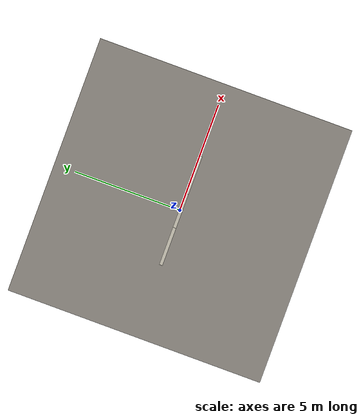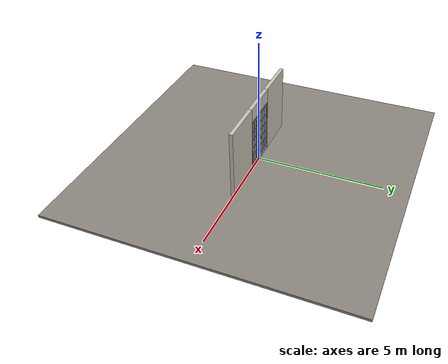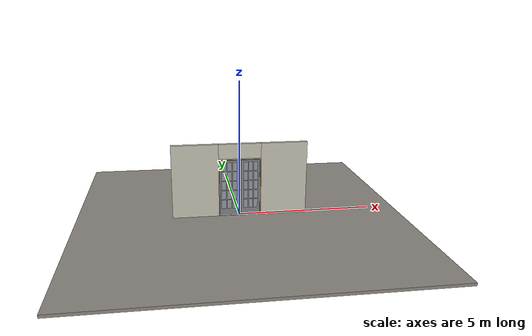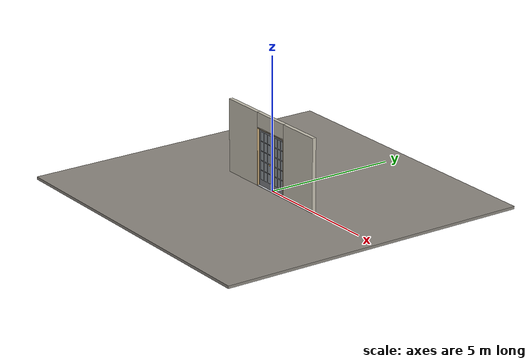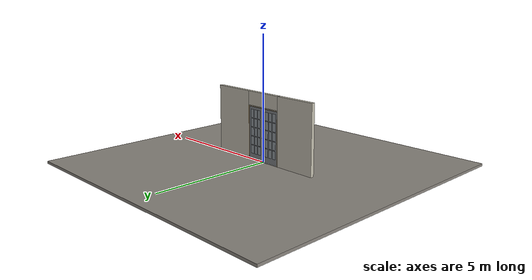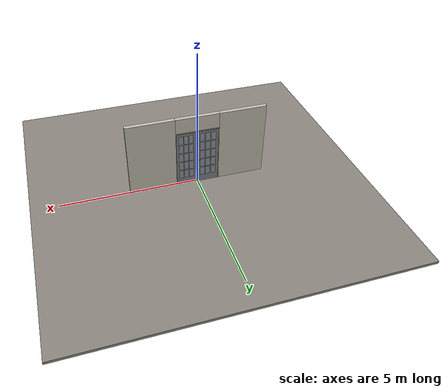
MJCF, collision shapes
<?xml version="1.0" ?>
<mujoco model="db0832_swing_double_full">
  <compiler angle="radian" meshdir="../../hardware" texturedir="../../textures" autolimits="true" inertiafromgeom="false"/>
  <option timestep="0.002" integrator="implicitfast" cone="elliptic" impratio="10" noslip_iterations="3">
    <flag multiccd="enable"/>
  </option>
  <size memory="16M"/>
  <default>
    <geom condim="4" solref="0.005 1" solimp="0.95 0.99 0.001"/>
    <joint solreflimit="0.005 1" solimplimit="0.95 0.99 0.001"/>
    <tendon solreflimit="0.005 1"/>
    <equality solref="0.002 1"/>
  </default>
  <visual>
    <headlight ambient="0.4 0.4 0.4" diffuse="0.7 0.7 0.7" specular="0.2 0.2 0.2"/>
    <quality shadowsize="4096"/>
    <map znear="0.01" zfar="60"/>
  </visual>
  <asset>
    <mesh name="hinge_2af0f4d6ca" file="hinge_2af0f4d6ca.obj"/>
    <mesh name="hinge_jamb_c0c0a62ada" file="hinge_jamb_c0c0a62ada.obj"/>
    <mesh name="knob_d1888f6f03" file="knob_d1888f6f03.obj"/>
    <material name="mat_floor" rgba="0.55 0.53 0.5 1" specular="0.2" shininess="0.15" reflectance="0"/>
    <material name="mat_wall" rgba="0.78 0.76 0.7 1" specular="0.2" shininess="0.1" reflectance="0"/>
    <material name="mat_leaf_a" rgba="0.5 0.51 0.53 1" specular="0.2" shininess="0.41" reflectance="0"/>
    <material name="mat_glass" rgba="0.85 0.92 0.95 0.25" specular="0.2" shininess="0.95" reflectance="0.1"/>
    <material name="mat_hinge" rgba="0.65 0.66 0.68 1" specular="0.74" shininess="0.5" reflectance="0.36"/>
    <material name="mat_op_brass" rgba="0.85 0.66 0.3 1" specular="0.8" shininess="0.75" reflectance="0.4"/>
    <material name="mat_trim" rgba="0.85 0.66 0.3 1" specular="0.8" shininess="0.75" reflectance="0.4"/>
    <material name="mat_bolt" rgba="0.85 0.66 0.3 1" specular="0.8" shininess="0.75" reflectance="0.4"/>
    <material name="mat_leaf_b" rgba="0.5 0.51 0.53 1" specular="0.2" shininess="0.41" reflectance="0"/>
    <material name="mat_frame" rgba="0.82 0.7 0.5 1" specular="0.2" shininess="0.45" reflectance="0"/>
    <material name="mat_threshold" rgba="0.8 0.81 0.83 1" specular="0.8" shininess="0.6" reflectance="0.4"/>
    <material name="mat_astragal" rgba="0.8 0.81 0.83 1" specular="0.8" shininess="0.6" reflectance="0.4"/>
    <texture name="skybox" type="skybox" builtin="gradient" rgb1="0.6 0.7 0.85" rgb2="0.9 0.92 0.95" width="256" height="256"/>
  </asset>
  <worldbody>
    <light name="sun" pos="1.5 -2.5 4" dir="-0.3 0.5 -0.8" directional="true" diffuse="0.8 0.8 0.8" specular="0.3 0.3 0.3" castshadow="true"/>
    <light name="fill" pos="-1.5 2.5 3" dir="0.3 -0.5 -0.7" directional="true" diffuse="0.35 0.35 0.4" castshadow="false"/>
    <camera name="robot_view" pos="0 -2.668312 1.812087" xyaxes="1 0 0 0 0.26963 0.962964" fovy="52"/>
    <camera name="far_view" pos="0 2.607312 1.812087" xyaxes="-1 0 0 0 -0.26963 0.962964" fovy="52"/>
    <camera name="iso" pos="-2.004737 -2.246262 2.234138" xyaxes="0.741536 -0.670913 0 0.242917 0.268487 0.932151" fovy="46"/>
    <camera name="detail_handle" pos="0.1085 -0.8685 1.245" xyaxes="0.97561 0.219512 0 -0.070934 0.315262 0.94635" fovy="38"/>
    <geom name="floor" type="box" size="6 6 0.05" pos="0 0 -0.05" material="mat_floor" group="0" contype="1" conaffinity="1" friction="0.8 0.005 0.0001" density="2400"/>
    <geom name="wall_left" type="box" size="0.85725 0.0725 1.3735" pos="-1.64275 -0.0305 1.3735" material="mat_wall" group="0" contype="1" conaffinity="1" friction="0.6 0.005 0.0001" density="800"/>
    <geom name="wall_right" type="box" size="0.85725 0.0725 1.3735" pos="1.64275 -0.0305 1.3735" material="mat_wall" group="0" contype="1" conaffinity="1" friction="0.6 0.005 0.0001" density="800"/>
    <geom name="wall_header" type="box" size="0.7855 0.0725 0.2755" pos="0 -0.0305 2.4715" material="mat_wall" group="0" contype="1" conaffinity="1" friction="0.6 0.005 0.0001" density="800"/>
    <geom name="hinge_0_jamb" type="mesh" mesh="hinge_jamb_c0c0a62ada" pos="-0.7635 0.029 0.267" quat="0 1 0 0" material="mat_hinge" group="1" contype="0" conaffinity="0" density="7850"/>
    <geom name="hinge_1_jamb" type="mesh" mesh="hinge_jamb_c0c0a62ada" pos="-0.7635 0.029 1.08" quat="0 1 0 0" material="mat_hinge" group="1" contype="0" conaffinity="0" density="7850"/>
    <geom name="hinge_2_jamb" type="mesh" mesh="hinge_jamb_c0c0a62ada" pos="-0.7635 0.029 1.963" quat="0 1 0 0" material="mat_hinge" group="1" contype="0" conaffinity="0" density="7850"/>
    <geom name="hinge_0_jamb_2" type="mesh" mesh="hinge_jamb_c0c0a62ada" pos="0.7635 0.029 0.267" quat="0 0 0 1" material="mat_hinge" group="1" contype="0" conaffinity="0" density="7850"/>
    <geom name="hinge_1_jamb_2" type="mesh" mesh="hinge_jamb_c0c0a62ada" pos="0.7635 0.029 1.08" quat="0 0 0 1" material="mat_hinge" group="1" contype="0" conaffinity="0" density="7850"/>
    <geom name="hinge_2_jamb_2" type="mesh" mesh="hinge_jamb_c0c0a62ada" pos="0.7635 0.029 1.963" quat="0 0 0 1" material="mat_hinge" group="1" contype="0" conaffinity="0" density="7850"/>
    <geom name="jamb_l" type="box" size="0.0095 0.0725 1.0735" pos="-0.776 -0.0305 1.0735" material="mat_frame" group="0" contype="1" conaffinity="1" friction="0.6 0.005 0.0001" density="300"/>
    <geom name="jamb_r" type="box" size="0.0095 0.0725 1.0735" pos="0.776 -0.0305 1.0735" material="mat_frame" group="0" contype="1" conaffinity="1" friction="0.6 0.005 0.0001" density="300"/>
    <geom name="jamb_head" type="box" size="0.7855 0.0725 0.0095" pos="0 -0.0305 2.1565" material="mat_frame" group="0" contype="1" conaffinity="1" friction="0.6 0.005 0.0001" density="300"/>
    <geom name="head_stud" type="box" size="0.7855 0.0725 0.015" pos="0 -0.0305 2.181" material="mat_wall" group="0" contype="1" conaffinity="1" friction="0.6 0.005 0.0001" density="500"/>
    <geom name="stop_l" type="box" size="0.015 0.006 1.0735" pos="-0.7515 -0.0285 1.0735" material="mat_frame" group="0" contype="1" conaffinity="1" friction="0.6 0.005 0.0001" density="300"/>
    <geom name="stop_r" type="box" size="0.015 0.006 1.0735" pos="0.7515 -0.0285 1.0735" material="mat_frame" group="0" contype="1" conaffinity="1" friction="0.6 0.005 0.0001" density="300"/>
    <geom name="stop_head" type="box" size="0.7665 0.006 0.015" pos="0 -0.0285 2.132" material="mat_frame" group="0" contype="1" conaffinity="1" friction="0.6 0.005 0.0001" density="300"/>
    <geom name="threshold" type="box" size="0.7855 0.0725 0.0065" pos="0 -0.0305 0.0065" material="mat_threshold" group="0" contype="1" conaffinity="1" friction="0.5 0.005 0.0001" density="2700"/>
    <site name="approach_point" pos="0 -1.5 0" quat="1 0 0 0" size="0.05" rgba="0.2 0.9 0.2 0.5" group="4"/>
    <site name="goal_point" pos="0 1.5 0" quat="1 0 0 0" size="0.05" rgba="0.2 0.9 0.2 0.5" group="4"/>
    <site name="door_plane_center" pos="0 0 1.0735" quat="1 0 0 0" size="0.02" rgba="0.2 0.9 0.2 0.5" group="4"/>
    <site name="approach_point_2" pos="0 -1.5 0" quat="1 0 0 0" size="0.05" rgba="0.2 0.9 0.2 0.5" group="4"/>
    <site name="goal_point_2" pos="0 1.5 0" quat="1 0 0 0" size="0.05" rgba="0.2 0.9 0.2 0.5" group="4"/>
    <site name="door_plane_center_2" pos="0 0 1.0735" quat="1 0 0 0" size="0.02" rgba="0.2 0.9 0.2 0.5" group="4"/>
    <site name="approach_point_3" pos="0 -1.5 0" quat="1 0 0 0" size="0.05" rgba="0.2 0.9 0.2 0.5" group="4"/>
    <site name="goal_point_3" pos="0 1.5 0" quat="1 0 0 0" size="0.05" rgba="0.2 0.9 0.2 0.5" group="4"/>
    <site name="door_plane_center_3" pos="0 0 1.0735" quat="1 0 0 0" size="0.02" rgba="0.2 0.9 0.2 0.5" group="4"/>
    <body name="leaf_a" pos="-0.7665 0 0">
      <inertial pos="0.377243 0.000282 1.080464" mass="38.542839" quat="0.500394 0.499328 -0.500663 0.499614" diaginertia="1.938932516 14.583607129 16.509663205"/>
      <joint name="leaf_a_hinge" type="hinge" axis="0 0 1" pos="0.003 0.029 0" limited="true" range="0 1.919862" solreflimit="0.02 1" damping="0.179937" frictionloss="1.050525" armature="0.02"/>
      <geom name="leaf_a_slab" type="box" size="0.381 0.022 1.063" pos="0.384 0 1.08" material="mat_leaf_a" group="0" contype="1" conaffinity="1" friction="0.4 0.005 0.0001" density="1"/>
      <geom name="leaf_a_glass_0" type="box" size="0.087 0.0228 0.166584" pos="0.18 0 0.417444" material="mat_glass" group="1" contype="0" conaffinity="0" density="1"/>
      <geom name="leaf_a_glass_1" type="box" size="0.087 0.0228 0.166584" pos="0.384 0 0.417444" material="mat_glass" group="1" contype="0" conaffinity="0" density="1"/>
      <geom name="leaf_a_glass_2" type="box" size="0.087 0.0228 0.166584" pos="0.588 0 0.417444" material="mat_glass" group="1" contype="0" conaffinity="0" density="1"/>
      <geom name="leaf_a_glass_3" type="box" size="0.087 0.0228 0.166584" pos="0.18 0 0.780612" material="mat_glass" group="1" contype="0" conaffinity="0" density="1"/>
      <geom name="leaf_a_glass_4" type="box" size="0.087 0.0228 0.166584" pos="0.384 0 0.780612" material="mat_glass" group="1" contype="0" conaffinity="0" density="1"/>
      <geom name="leaf_a_glass_5" type="box" size="0.087 0.0228 0.166584" pos="0.588 0 0.780612" material="mat_glass" group="1" contype="0" conaffinity="0" density="1"/>
      <geom name="leaf_a_glass_6" type="box" size="0.087 0.0228 0.166584" pos="0.18 0 1.14378" material="mat_glass" group="1" contype="0" conaffinity="0" density="1"/>
      <geom name="leaf_a_glass_7" type="box" size="0.087 0.0228 0.166584" pos="0.384 0 1.14378" material="mat_glass" group="1" contype="0" conaffinity="0" density="1"/>
      <geom name="leaf_a_glass_8" type="box" size="0.087 0.0228 0.166584" pos="0.588 0 1.14378" material="mat_glass" group="1" contype="0" conaffinity="0" density="1"/>
      <geom name="leaf_a_glass_9" type="box" size="0.087 0.0228 0.166584" pos="0.18 0 1.506948" material="mat_glass" group="1" contype="0" conaffinity="0" density="1"/>
      <geom name="leaf_a_glass_10" type="box" size="0.087 0.0228 0.166584" pos="0.384 0 1.506948" material="mat_glass" group="1" contype="0" conaffinity="0" density="1"/>
      <geom name="leaf_a_glass_11" type="box" size="0.087 0.0228 0.166584" pos="0.588 0 1.506948" material="mat_glass" group="1" contype="0" conaffinity="0" density="1"/>
      <geom name="leaf_a_glass_12" type="box" size="0.087 0.0228 0.166584" pos="0.18 0 1.870116" material="mat_glass" group="1" contype="0" conaffinity="0" density="1"/>
      <geom name="leaf_a_glass_13" type="box" size="0.087 0.0228 0.166584" pos="0.384 0 1.870116" material="mat_glass" group="1" contype="0" conaffinity="0" density="1"/>
      <geom name="leaf_a_glass_14" type="box" size="0.087 0.0228 0.166584" pos="0.588 0 1.870116" material="mat_glass" group="1" contype="0" conaffinity="0" density="1"/>
      <geom name="hinge_0" type="mesh" mesh="hinge_2af0f4d6ca" pos="0.003 0.029 0.267" quat="0 1 0 0" material="mat_hinge" group="1" contype="0" conaffinity="0" density="7850"/>
      <geom name="hinge_1" type="mesh" mesh="hinge_2af0f4d6ca" pos="0.003 0.029 1.08" quat="0 1 0 0" material="mat_hinge" group="1" contype="0" conaffinity="0" density="7850"/>
      <geom name="hinge_2" type="mesh" mesh="hinge_2af0f4d6ca" pos="0.003 0.029 1.963" quat="0 1 0 0" material="mat_hinge" group="1" contype="0" conaffinity="0" density="7850"/>
      <geom name="leaf_a_latch_bolt_faceplate" type="box" size="0.0006 0.01235 0.0267" pos="0.7644 0 0.965" material="mat_bolt" group="1" contype="0" conaffinity="0" density="8500"/>
      <site name="leaf_a_edge_mid" pos="0.765 0 1.063" quat="1 0 0 0" size="0.02" rgba="0.2 0.9 0.2 0.5" group="4"/>
      <body name="leaf_a_handle" pos="0.695 0 0.965">
        <inertial pos="0 0 0" mass="1.151952" quat="0.5 -0.5 0.5 -0.5" diaginertia="0.000312514 0.004264603 0.004264603"/>
        <joint name="leaf_a_handle_hinge" type="hinge" axis="0 -1 0" limited="true" range="0 0.87" damping="0.143614" frictionloss="0.038" stiffness="0.5" springref="-0.5" armature="0.01"/>
        <geom name="leaf_a_handle_spindle" type="cylinder" size="0.006 0.03" pos="0 0 0" quat="0.707107 -0.707107 0 0" material="mat_op_brass" group="1" contype="0" conaffinity="0" density="7850"/>
        <geom name="leaf_a_handle_knob_n" type="mesh" mesh="knob_d1888f6f03" pos="0 -0.022 0" quat="0.707107 0.707107 0 0" material="mat_op_brass" group="1" contype="0" conaffinity="0" density="3000"/>
        <geom name="leaf_a_handle_knob_col_n" type="sphere" size="0.0243" pos="0 -0.0685 0" material="mat_op_brass" group="0" contype="1" conaffinity="1" friction="0.9 0.01 0.0001" density="3000"/>
        <geom name="leaf_a_handle_knob_neck_n" type="cylinder" size="0.011 0.012" pos="0 -0.034 0" quat="0.707107 -0.707107 0 0" material="mat_op_brass" group="3" contype="1" conaffinity="1" rgba="0.8 0.3 0.3 0.25" friction="0.6 0.005 0.0001" density="3000"/>
        <geom name="leaf_a_handle_knob_p" type="mesh" mesh="knob_d1888f6f03" pos="0 0.022 0" quat="-0.707107 0.707107 0 0" material="mat_op_brass" group="1" contype="0" conaffinity="0" density="3000"/>
        <geom name="leaf_a_handle_knob_col_p" type="sphere" size="0.0243" pos="0 0.0685 0" material="mat_op_brass" group="0" contype="1" conaffinity="1" friction="0.9 0.01 0.0001" density="3000"/>
        <geom name="leaf_a_handle_knob_neck_p" type="cylinder" size="0.011 0.012" pos="0 0.034 0" quat="0.707107 -0.707107 0 0" material="mat_op_brass" group="3" contype="1" conaffinity="1" rgba="0.8 0.3 0.3 0.25" friction="0.6 0.005 0.0001" density="3000"/>
        <site name="leaf_a_handle_grip_n" pos="0 -0.0685 0" quat="1 0 0 0" size="0.012" rgba="0.2 0.9 0.2 0.5" group="4"/>
        <site name="leaf_a_handle_grip_p" pos="0 0.0685 0" quat="1 0 0 0" size="0.012" rgba="0.2 0.9 0.2 0.5" group="4"/>
      </body>
      <body name="leaf_a_latch_bolt" pos="0.765 0 0.965">
        <inertial pos="-0.00865 0 0" mass="0.041419" quat="0.92388 -0.382683 0 0" diaginertia="0.000000798 0.000005598 0.000005598"/>
        <joint name="leaf_a_latch_bolt_slide" type="slide" axis="-1 0 0" limited="true" range="0 0.0127" damping="2" frictionloss="0.3" stiffness="300" springref="-0.008333" armature="0.1"/>
        <geom name="leaf_a_latch_bolt_capsule" type="capsule" size="0.00635 0.015" pos="-0.00865 0 0" quat="0.707107 0 0.707107 0" material="mat_bolt" group="0" contype="1" conaffinity="1" friction="0.2 0.005 0.0001" density="8500"/>
      </body>
    </body>
    <body name="leaf_b" pos="0.7665 0 0">
      <inertial pos="-0.400292 -0.0035 1.078826" mass="37.446171" quat="0.494018 0.507069 -0.492789 0.505952" diaginertia="2.130278804 14.118108977 16.232621646"/>
      <joint name="leaf_b_hinge" type="hinge" axis="0 0 -1" pos="-0.003 0.029 0" limited="true" range="0 0.001" solreflimit="0.02 1" damping="0.179937" frictionloss="1.050525" armature="0.02"/>
      <geom name="leaf_b_edge_965_wall_n" type="box" size="0.03 0.007075 0.0167" pos="-0.735 -0.014925 0.965" material="mat_leaf_b" group="0" contype="1" conaffinity="1" friction="0.6 0.005 0.0001" density="1"/>
      <geom name="leaf_b_edge_965_wall_p" type="box" size="0.03 0.008 0.0167" pos="-0.735 0.01585 0.965" material="mat_leaf_b" group="0" contype="1" conaffinity="1" friction="0.6 0.005 0.0001" density="1"/>
      <geom name="leaf_b_edge_965_ramp" type="box" size="0.03 0.01649 0.0167" pos="-0.730861 0.026388 0.965" quat="0.977148 0 0 -0.212558" material="mat_leaf_b" group="0" contype="1" conaffinity="1" friction="0.12 0.005 0.0001" density="1"/>
      <geom name="leaf_b_edge_965_back" type="box" size="0.02165 0.00785 0.0167" pos="-0.72665 0 0.965" material="mat_leaf_b" group="0" contype="1" conaffinity="1" friction="0.6 0.005 0.0001" density="1"/>
      <geom name="leaf_b_edge_seg_0" type="box" size="0.03 0.022 0.46565" pos="-0.735 0 0.48265" material="mat_leaf_b" group="0" contype="1" conaffinity="1" friction="0.6 0.005 0.0001" density="1"/>
      <geom name="leaf_b_edge_seg_1" type="box" size="0.03 0.022 0.58065" pos="-0.735 0 1.56235" material="mat_leaf_b" group="0" contype="1" conaffinity="1" friction="0.6 0.005 0.0001" density="1"/>
      <geom name="leaf_b_slab" type="box" size="0.351 0.022 1.063" pos="-0.354 0 1.08" material="mat_leaf_b" group="0" contype="1" conaffinity="1" friction="0.4 0.005 0.0001" density="1"/>
      <geom name="leaf_b_glass_0" type="box" size="0.077 0.0228 0.166584" pos="-0.17 0 0.417444" material="mat_glass" group="1" contype="0" conaffinity="0" density="1"/>
      <geom name="leaf_b_glass_1" type="box" size="0.077 0.0228 0.166584" pos="-0.354 0 0.417444" material="mat_glass" group="1" contype="0" conaffinity="0" density="1"/>
      <geom name="leaf_b_glass_2" type="box" size="0.077 0.0228 0.166584" pos="-0.538 0 0.417444" material="mat_glass" group="1" contype="0" conaffinity="0" density="1"/>
      <geom name="leaf_b_glass_3" type="box" size="0.077 0.0228 0.166584" pos="-0.17 0 0.780612" material="mat_glass" group="1" contype="0" conaffinity="0" density="1"/>
      <geom name="leaf_b_glass_4" type="box" size="0.077 0.0228 0.166584" pos="-0.354 0 0.780612" material="mat_glass" group="1" contype="0" conaffinity="0" density="1"/>
      <geom name="leaf_b_glass_5" type="box" size="0.077 0.0228 0.166584" pos="-0.538 0 0.780612" material="mat_glass" group="1" contype="0" conaffinity="0" density="1"/>
      <geom name="leaf_b_glass_6" type="box" size="0.077 0.0228 0.166584" pos="-0.17 0 1.14378" material="mat_glass" group="1" contype="0" conaffinity="0" density="1"/>
      <geom name="leaf_b_glass_7" type="box" size="0.077 0.0228 0.166584" pos="-0.354 0 1.14378" material="mat_glass" group="1" contype="0" conaffinity="0" density="1"/>
      <geom name="leaf_b_glass_8" type="box" size="0.077 0.0228 0.166584" pos="-0.538 0 1.14378" material="mat_glass" group="1" contype="0" conaffinity="0" density="1"/>
      <geom name="leaf_b_glass_9" type="box" size="0.077 0.0228 0.166584" pos="-0.17 0 1.506948" material="mat_glass" group="1" contype="0" conaffinity="0" density="1"/>
      <geom name="leaf_b_glass_10" type="box" size="0.077 0.0228 0.166584" pos="-0.354 0 1.506948" material="mat_glass" group="1" contype="0" conaffinity="0" density="1"/>
      <geom name="leaf_b_glass_11" type="box" size="0.077 0.0228 0.166584" pos="-0.538 0 1.506948" material="mat_glass" group="1" contype="0" conaffinity="0" density="1"/>
      <geom name="leaf_b_glass_12" type="box" size="0.077 0.0228 0.166584" pos="-0.17 0 1.870116" material="mat_glass" group="1" contype="0" conaffinity="0" density="1"/>
      <geom name="leaf_b_glass_13" type="box" size="0.077 0.0228 0.166584" pos="-0.354 0 1.870116" material="mat_glass" group="1" contype="0" conaffinity="0" density="1"/>
      <geom name="leaf_b_glass_14" type="box" size="0.077 0.0228 0.166584" pos="-0.538 0 1.870116" material="mat_glass" group="1" contype="0" conaffinity="0" density="1"/>
      <geom name="hinge_0_2" type="mesh" mesh="hinge_2af0f4d6ca" pos="-0.003 0.029 0.267" quat="0 0 0 1" material="mat_hinge" group="1" contype="0" conaffinity="0" density="7850"/>
      <geom name="hinge_1_2" type="mesh" mesh="hinge_2af0f4d6ca" pos="-0.003 0.029 1.08" quat="0 0 0 1" material="mat_hinge" group="1" contype="0" conaffinity="0" density="7850"/>
      <geom name="hinge_2_2" type="mesh" mesh="hinge_2af0f4d6ca" pos="-0.003 0.029 1.963" quat="0 0 0 1" material="mat_hinge" group="1" contype="0" conaffinity="0" density="7850"/>
      <geom name="astragal" type="box" size="0.02 0.008 1.047" pos="-0.769 -0.03 1.067" material="mat_astragal" group="0" contype="1" conaffinity="1" friction="0.6 0.005 0.0001" density="2700"/>
      <site name="leaf_b_edge_mid" pos="-0.765 0 1.063" quat="1 0 0 0" size="0.02" rgba="0.2 0.9 0.2 0.5" group="4"/>
    </body>
  </worldbody>
  <tendon>
    <fixed name="leaf_a_latch_bolt_coupling" limited="true" range="0 10">
      <joint joint="leaf_a_latch_bolt_slide" coef="1"/>
      <joint joint="leaf_a_handle_hinge" coef="-0.015679"/>
    </fixed>
  </tendon>
  <sensor>
    <jointpos name="leaf_a_hinge_pos" joint="leaf_a_hinge"/>
    <jointvel name="leaf_a_hinge_vel" joint="leaf_a_hinge"/>
    <jointpos name="leaf_a_handle_hinge_pos" joint="leaf_a_handle_hinge"/>
    <jointvel name="leaf_a_handle_hinge_vel" joint="leaf_a_handle_hinge"/>
    <jointpos name="leaf_a_latch_bolt_slide_pos" joint="leaf_a_latch_bolt_slide"/>
    <jointvel name="leaf_a_latch_bolt_slide_vel" joint="leaf_a_latch_bolt_slide"/>
    <jointpos name="leaf_b_hinge_pos" joint="leaf_b_hinge"/>
    <jointvel name="leaf_b_hinge_vel" joint="leaf_b_hinge"/>
  </sensor>
</mujoco>
